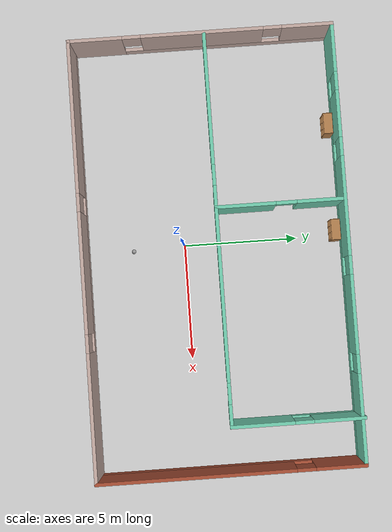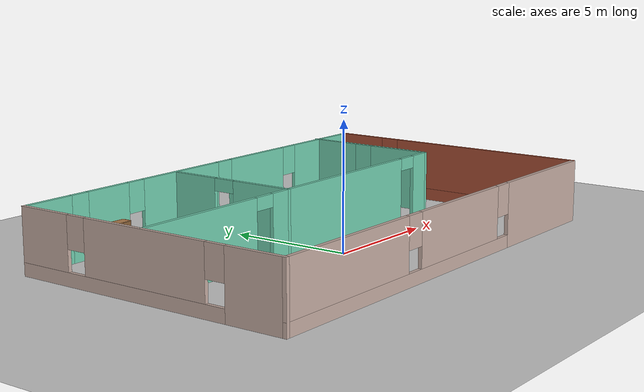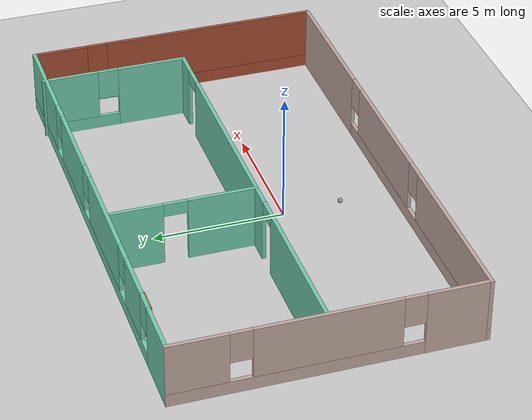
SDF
<sdf version="1.6">
 <world name="default">
  <model name="ground_plane">
   <static>1</static>
   <link name="link">
    <collision name="collision">
     <geometry><plane><normal>0 0 1</normal><size>100 100</size></plane></geometry>
     <surface><friction><ode><mu>100</mu><mu2>50</mu2></ode></friction></surface>
    </collision>
    <visual name="visual">
     <cast_shadows>0</cast_shadows>
     <geometry><plane><normal>0 0 1</normal><size>100 100</size></plane></geometry>
     <material>
      <script><uri>file://media/materials/scripts/gazebo.material</uri><name>Gazebo/Grey</name></script>
     </material>
    </visual>
   </link>
  </model>
  <light name="sun" type="directional">
   <pose>0 0 10 0 -0 0</pose>
   <diffuse>0.8 0.8 0.8 1</diffuse>
   <specular>0.1 0.1 0.1 1</specular>
   <attenuation>
    <range>1000</range>
    <constant>0.9</constant>
    <linear>0.01</linear>
    <quadratic>0.001</quadratic>
   </attenuation>
   <direction>-0.5 0.5 -1</direction>
  </light>
  <gravity>0 0 -9.8</gravity>
  <magnetic_field>6e-06 2.3e-05 -4.2e-05</magnetic_field>
  <atmosphere type="adiabatic"/>
  <physics name="default_physics" default="0" type="ode">
   <max_step_size>0.001</max_step_size>
   <real_time_factor>1</real_time_factor>
   <real_time_update_rate>1000</real_time_update_rate>
  </physics>
  <scene><ambient>0.4 0.4 0.4 1</ambient><background>0.7 0.7 0.7 1</background><shadows>1</shadows></scene>
  <spherical_coordinates>
   <surface_model>EARTH_WGS84</surface_model>
   <latitude_deg>0</latitude_deg>
   <longitude_deg>0</longitude_deg>
   <elevation>0</elevation>
   <heading_deg>0</heading_deg>
  </spherical_coordinates>
  <model name="bookshelf">
   <static>1</static>
   <link name="link">
    <inertial><mass>1</mass></inertial>
    <collision name="back">
     <pose>0 0.005 0.6 0 -0 0</pose>
     <geometry><box><size>0.9 0.01 1.2</size></box></geometry>
    </collision>
    <visual name="visual1">
     <pose>0 0.005 0.6 0 -0 0</pose>
     <geometry><box><size>0.9 0.01 1.2</size></box></geometry>
     <material>
      <script><uri>file://media/materials/scripts/gazebo.material</uri><name>Gazebo/Wood</name></script>
     </material>
    </visual>
    <collision name="left_side">
     <pose>0.45 -0.195 0.6 0 -0 0</pose>
     <geometry><box><size>0.02 0.4 1.2</size></box></geometry>
    </collision>
    <visual name="visual2">
     <pose>0.45 -0.195 0.6 0 -0 0</pose>
     <geometry><box><size>0.02 0.4 1.2</size></box></geometry>
     <material>
      <script><uri>file://media/materials/scripts/gazebo.material</uri><name>Gazebo/Wood</name></script>
     </material>
    </visual>
    <collision name="right_side">
     <pose>-0.45 -0.195 0.6 0 -0 0</pose>
     <geometry><box><size>0.02 0.4 1.2</size></box></geometry>
    </collision>
    <visual name="visual3">
     <pose>-0.45 -0.195 0.6 0 -0 0</pose>
     <geometry><box><size>0.02 0.4 1.2</size></box></geometry>
     <material>
      <script><uri>file://media/materials/scripts/gazebo.material</uri><name>Gazebo/Wood</name></script>
     </material>
    </visual>
    <collision name="bottom">
     <pose>0 -0.195 0.03 0 -0 0</pose>
     <geometry><box><size>0.88 0.4 0.06</size></box></geometry>
    </collision>
    <visual name="visual4">
     <pose>0 -0.195 0.03 0 -0 0</pose>
     <geometry><box><size>0.88 0.4 0.06</size></box></geometry>
     <material>
      <script><uri>file://media/materials/scripts/gazebo.material</uri><name>Gazebo/Wood</name></script>
     </material>
    </visual>
    <collision name="top">
     <pose>0 -0.195 1.19 0 -0 0</pose>
     <geometry><box><size>0.88 0.4 0.02</size></box></geometry>
    </collision>
    <visual name="visual5">
     <pose>0 -0.195 1.19 0 -0 0</pose>
     <geometry><box><size>0.88 0.4 0.02</size></box></geometry>
     <material>
      <script><uri>file://media/materials/scripts/gazebo.material</uri><name>Gazebo/Wood</name></script>
     </material>
    </visual>
    <collision name="low_shelf">
     <pose>0 -0.195 0.43 0 -0 0</pose>
     <geometry><box><size>0.88 0.4 0.02</size></box></geometry>
    </collision>
    <visual name="visual6">
     <pose>0 -0.195 0.43 0 -0 0</pose>
     <geometry><box><size>0.88 0.4 0.02</size></box></geometry>
     <material>
      <script><uri>file://media/materials/scripts/gazebo.material</uri><name>Gazebo/Wood</name></script>
     </material>
    </visual>
    <collision name="high_shelf">
     <pose>0 -0.195 0.8 0 -0 0</pose>
     <geometry><box><size>0.88 0.4 0.02</size></box></geometry>
    </collision>
    <visual name="visual7">
     <pose>0 -0.195 0.8 0 -0 0</pose>
     <geometry><box><size>0.88 0.4 0.02</size></box></geometry>
     <material>
      <script><uri>file://media/materials/scripts/gazebo.material</uri><name>Gazebo/Wood</name></script>
     </material>
    </visual>
   </link>
   <pose>-0.189029 6.86366 0 0 -0 0</pose>
  </model>
  <model name="bookshelf_0">
   <static>1</static>
   <link name="link">
    <inertial><mass>1</mass></inertial>
    <collision name="back">
     <pose>0 0.005 0.6 0 -0 0</pose>
     <geometry><box><size>0.9 0.01 1.2</size></box></geometry>
    </collision>
    <visual name="visual1">
     <pose>0 0.005 0.6 0 -0 0</pose>
     <geometry><box><size>0.9 0.01 1.2</size></box></geometry>
     <material>
      <script><uri>file://media/materials/scripts/gazebo.material</uri><name>Gazebo/Wood</name></script>
     </material>
    </visual>
    <collision name="left_side">
     <pose>0.45 -0.195 0.6 0 -0 0</pose>
     <geometry><box><size>0.02 0.4 1.2</size></box></geometry>
    </collision>
    <visual name="visual2">
     <pose>0.45 -0.195 0.6 0 -0 0</pose>
     <geometry><box><size>0.02 0.4 1.2</size></box></geometry>
     <material>
      <script><uri>file://media/materials/scripts/gazebo.material</uri><name>Gazebo/Wood</name></script>
     </material>
    </visual>
    <collision name="right_side">
     <pose>-0.45 -0.195 0.6 0 -0 0</pose>
     <geometry><box><size>0.02 0.4 1.2</size></box></geometry>
    </collision>
    <visual name="visual3">
     <pose>-0.45 -0.195 0.6 0 -0 0</pose>
     <geometry><box><size>0.02 0.4 1.2</size></box></geometry>
     <material>
      <script><uri>file://media/materials/scripts/gazebo.material</uri><name>Gazebo/Wood</name></script>
     </material>
    </visual>
    <collision name="bottom">
     <pose>0 -0.195 0.03 0 -0 0</pose>
     <geometry><box><size>0.88 0.4 0.06</size></box></geometry>
    </collision>
    <visual name="visual4">
     <pose>0 -0.195 0.03 0 -0 0</pose>
     <geometry><box><size>0.88 0.4 0.06</size></box></geometry>
     <material>
      <script><uri>file://media/materials/scripts/gazebo.material</uri><name>Gazebo/Wood</name></script>
     </material>
    </visual>
    <collision name="top">
     <pose>0 -0.195 1.19 0 -0 0</pose>
     <geometry><box><size>0.88 0.4 0.02</size></box></geometry>
    </collision>
    <visual name="visual5">
     <pose>0 -0.195 1.19 0 -0 0</pose>
     <geometry><box><size>0.88 0.4 0.02</size></box></geometry>
     <material>
      <script><uri>file://media/materials/scripts/gazebo.material</uri><name>Gazebo/Wood</name></script>
     </material>
    </visual>
    <collision name="low_shelf">
     <pose>0 -0.195 0.43 0 -0 0</pose>
     <geometry><box><size>0.88 0.4 0.02</size></box></geometry>
    </collision>
    <visual name="visual6">
     <pose>0 -0.195 0.43 0 -0 0</pose>
     <geometry><box><size>0.88 0.4 0.02</size></box></geometry>
     <material>
      <script><uri>file://media/materials/scripts/gazebo.material</uri><name>Gazebo/Wood</name></script>
     </material>
    </visual>
    <collision name="high_shelf">
     <pose>0 -0.195 0.8 0 -0 0</pose>
     <geometry><box><size>0.88 0.4 0.02</size></box></geometry>
    </collision>
    <visual name="visual7">
     <pose>0 -0.195 0.8 0 -0 0</pose>
     <geometry><box><size>0.88 0.4 0.02</size></box></geometry>
     <material>
      <script><uri>file://media/materials/scripts/gazebo.material</uri><name>Gazebo/Wood</name></script>
     </material>
    </visual>
   </link>
   <pose>-4.88066 6.89065 0 0 -0 0</pose>
  </model>
  <model name="myHouse_0">
   <pose>0.46401 1.38823 0 0 -0 0</pose>
   <link name="Wall_13">
    <pose>-9.425 -0.045494 0 0 -0 1.5708</pose>
    <visual name="Wall_13_Visual_0">
     <pose>-4.55656 0 1.25 0 -0 0</pose>
     <geometry><box><size>2.38689 0.15 2.5</size></box></geometry>
     <material>
      <script><uri>file://media/materials/scripts/gazebo.material</uri><name>Gazebo/Grey</name></script>
      <ambient>0.760784 0.662745 0.627451 1</ambient>
     </material>
    </visual>
    <collision name="Wall_13_Collision_0">
     <geometry><box><size>2.38689 0.15 2.5</size></box></geometry>
     <pose>-4.55656 0 1.25 0 -0 0</pose>
    </collision>
    <visual name="Wall_13_Visual_1">
     <pose>1.19344 0 0.25 0 -0 0</pose>
     <geometry><box><size>9.11311 0.15 0.5</size></box></geometry>
     <material>
      <script><uri>file://media/materials/scripts/gazebo.material</uri><name>Gazebo/Grey</name></script>
      <ambient>0.760784 0.662745 0.627451 1</ambient>
     </material>
    </visual>
    <collision name="Wall_13_Collision_1">
     <geometry><box><size>9.11311 0.15 0.5</size></box></geometry>
     <pose>1.19344 0 0.25 0 -0 0</pose>
    </collision>
    <visual name="Wall_13_Visual_2">
     <pose>0.082545 0 1.5 0 -0 0</pose>
     <geometry><box><size>5.29132 0.15 2</size></box></geometry>
     <material>
      <script><uri>file://media/materials/scripts/gazebo.material</uri><name>Gazebo/Grey</name></script>
      <ambient>0.760784 0.662745 0.627451 1</ambient>
     </material>
    </visual>
    <collision name="Wall_13_Collision_2">
     <geometry><box><size>5.29132 0.15 2</size></box></geometry>
     <pose>0.082545 0 1.5 0 -0 0</pose>
    </collision>
    <visual name="Wall_13_Visual_3">
     <pose>4.6391 0 1.5 0 -0 0</pose>
     <geometry><box><size>2.2218 0.15 2</size></box></geometry>
     <material>
      <script><uri>file://media/materials/scripts/gazebo.material</uri><name>Gazebo/Grey</name></script>
      <ambient>0.760784 0.662745 0.627451 1</ambient>
     </material>
    </visual>
    <collision name="Wall_13_Collision_3">
     <geometry><box><size>2.2218 0.15 2</size></box></geometry>
     <pose>4.6391 0 1.5 0 -0 0</pose>
    </collision>
    <visual name="Wall_13_Visual_4">
     <pose>-2.96311 0 1.9 0 -0 0</pose>
     <geometry><box><size>0.8 0.15 1.2</size></box></geometry>
     <material>
      <script><uri>file://media/materials/scripts/gazebo.material</uri><name>Gazebo/Grey</name></script>
      <ambient>0.760784 0.662745 0.627451 1</ambient>
     </material>
    </visual>
    <collision name="Wall_13_Collision_4">
     <geometry><box><size>0.8 0.15 1.2</size></box></geometry>
     <pose>-2.96311 0 1.9 0 -0 0</pose>
    </collision>
    <visual name="Wall_13_Visual_5">
     <pose>3.1282 0 1.9 0 -0 0</pose>
     <geometry><box><size>0.8 0.15 1.2</size></box></geometry>
     <material>
      <script><uri>file://media/materials/scripts/gazebo.material</uri><name>Gazebo/Grey</name></script>
      <ambient>0.760784 0.662745 0.627451 1</ambient>
     </material>
    </visual>
    <collision name="Wall_13_Collision_5">
     <geometry><box><size>0.8 0.15 1.2</size></box></geometry>
     <pose>3.1282 0 1.9 0 -0 0</pose>
    </collision>
   </link>
   <link name="Wall_14">
    <pose>-1e-06 5.62951 0 0 -0 0</pose>
    <visual name="Wall_14_Visual_0">
     <pose>-8.41086 0 1.25 0 -0 0</pose>
     <geometry><box><size>2.17828 0.15 2.5</size></box></geometry>
     <material>
      <script><uri>file://media/materials/scripts/gazebo.material</uri><name>Gazebo/Grey</name></script>
      <ambient>0.435294 0.796078 0.67451 1</ambient>
     </material>
    </visual>
    <collision name="Wall_14_Collision_0">
     <geometry><box><size>2.17828 0.15 2.5</size></box></geometry>
     <pose>-8.41086 0 1.25 0 -0 0</pose>
    </collision>
    <visual name="Wall_14_Visual_1">
     <pose>1.08914 0 0.25 0 -0 0</pose>
     <geometry><box><size>16.8217 0.15 0.5</size></box></geometry>
     <material>
      <script><uri>file://media/materials/scripts/gazebo.material</uri><name>Gazebo/Grey</name></script>
      <ambient>0.435294 0.796078 0.67451 1</ambient>
     </material>
    </visual>
    <collision name="Wall_14_Collision_1">
     <geometry><box><size>16.8217 0.15 0.5</size></box></geometry>
     <pose>1.08914 0 0.25 0 -0 0</pose>
    </collision>
    <visual name="Wall_14_Visual_2">
     <pose>-5.50319 0 1.5 0 -0 0</pose>
     <geometry><box><size>2.03705 0.15 2</size></box></geometry>
     <material>
      <script><uri>file://media/materials/scripts/gazebo.material</uri><name>Gazebo/Grey</name></script>
      <ambient>0.435294 0.796078 0.67451 1</ambient>
     </material>
    </visual>
    <collision name="Wall_14_Collision_2">
     <geometry><box><size>2.03705 0.15 2</size></box></geometry>
     <pose>-5.50319 0 1.5 0 -0 0</pose>
    </collision>
    <visual name="Wall_14_Visual_3">
     <pose>-1.5501 0 1.5 0 -0 0</pose>
     <geometry><box><size>4.26914 0.15 2</size></box></geometry>
     <material>
      <script><uri>file://media/materials/scripts/gazebo.material</uri><name>Gazebo/Grey</name></script>
      <ambient>0.435294 0.796078 0.67451 1</ambient>
     </material>
    </visual>
    <collision name="Wall_14_Collision_3">
     <geometry><box><size>4.26914 0.15 2</size></box></geometry>
     <pose>-1.5501 0 1.5 0 -0 0</pose>
    </collision>
    <visual name="Wall_14_Visual_4">
     <pose>3.08097 0 1.5 0 -0 0</pose>
     <geometry><box><size>3.393 0.15 2</size></box></geometry>
     <material>
      <script><uri>file://media/materials/scripts/gazebo.material</uri><name>Gazebo/Grey</name></script>
      <ambient>0.435294 0.796078 0.67451 1</ambient>
     </material>
    </visual>
    <collision name="Wall_14_Collision_4">
     <geometry><box><size>3.393 0.15 2</size></box></geometry>
     <pose>3.08097 0 1.5 0 -0 0</pose>
    </collision>
    <visual name="Wall_14_Visual_5">
     <pose>7.53873 0 1.5 0 -0 0</pose>
     <geometry><box><size>3.92253 0.15 2</size></box></geometry>
     <material>
      <script><uri>file://media/materials/scripts/gazebo.material</uri><name>Gazebo/Grey</name></script>
      <ambient>0.435294 0.796078 0.67451 1</ambient>
     </material>
    </visual>
    <collision name="Wall_14_Collision_5">
     <geometry><box><size>3.92253 0.15 2</size></box></geometry>
     <pose>7.53873 0 1.5 0 -0 0</pose>
    </collision>
    <visual name="Wall_14_Visual_6">
     <pose>-6.92172 0 1.9 0 -0 0</pose>
     <geometry><box><size>0.8 0.15 1.2</size></box></geometry>
     <material>
      <script><uri>file://media/materials/scripts/gazebo.material</uri><name>Gazebo/Grey</name></script>
      <ambient>0.435294 0.796078 0.67451 1</ambient>
     </material>
    </visual>
    <collision name="Wall_14_Collision_6">
     <geometry><box><size>0.8 0.15 1.2</size></box></geometry>
     <pose>-6.92172 0 1.9 0 -0 0</pose>
    </collision>
    <visual name="Wall_14_Visual_7">
     <pose>-4.08467 0 1.9 0 -0 0</pose>
     <geometry><box><size>0.8 0.15 1.2</size></box></geometry>
     <material>
      <script><uri>file://media/materials/scripts/gazebo.material</uri><name>Gazebo/Grey</name></script>
      <ambient>0.435294 0.796078 0.67451 1</ambient>
     </material>
    </visual>
    <collision name="Wall_14_Collision_7">
     <geometry><box><size>0.8 0.15 1.2</size></box></geometry>
     <pose>-4.08467 0 1.9 0 -0 0</pose>
    </collision>
    <visual name="Wall_14_Visual_8">
     <pose>0.984475 0 1.9 0 -0 0</pose>
     <geometry><box><size>0.8 0.15 1.2</size></box></geometry>
     <material>
      <script><uri>file://media/materials/scripts/gazebo.material</uri><name>Gazebo/Grey</name></script>
      <ambient>0.435294 0.796078 0.67451 1</ambient>
     </material>
    </visual>
    <collision name="Wall_14_Collision_8">
     <geometry><box><size>0.8 0.15 1.2</size></box></geometry>
     <pose>0.984475 0 1.9 0 -0 0</pose>
    </collision>
    <visual name="Wall_14_Visual_9">
     <pose>5.17747 0 1.9 0 -0 0</pose>
     <geometry><box><size>0.8 0.15 1.2</size></box></geometry>
     <material>
      <script><uri>file://media/materials/scripts/gazebo.material</uri><name>Gazebo/Grey</name></script>
      <ambient>0.435294 0.796078 0.67451 1</ambient>
     </material>
    </visual>
    <collision name="Wall_14_Collision_9">
     <geometry><box><size>0.8 0.15 1.2</size></box></geometry>
     <pose>5.17747 0 1.9 0 -0 0</pose>
    </collision>
   </link>
   <link name="Wall_15">
    <pose>9.425 -0.045494 0 0 0 -1.5708</pose>
    <visual name="Wall_15_Visual_0">
     <pose>-4.65996 0 1.25 0 -0 0</pose>
     <geometry><box><size>2.18007 0.15 2.5</size></box></geometry>
     <material>
      <script><uri>file://media/materials/scripts/gazebo.material</uri><name>Gazebo/Bricks</name></script>
      <ambient>0.760784 0.662745 0.627451 1</ambient>
     </material>
    </visual>
    <collision name="Wall_15_Collision_0">
     <geometry><box><size>2.18007 0.15 2.5</size></box></geometry>
     <pose>-4.65996 0 1.25 0 -0 0</pose>
    </collision>
    <visual name="Wall_15_Visual_1">
     <pose>1.09004 0 0.25 0 -0 0</pose>
     <geometry><box><size>9.31992 0.15 0.5</size></box></geometry>
     <material>
      <script><uri>file://media/materials/scripts/gazebo.material</uri><name>Gazebo/Bricks</name></script>
      <ambient>0.760784 0.662745 0.627451 1</ambient>
     </material>
    </visual>
    <collision name="Wall_15_Collision_1">
     <geometry><box><size>9.31992 0.15 0.5</size></box></geometry>
     <pose>1.09004 0 0.25 0 -0 0</pose>
    </collision>
    <visual name="Wall_15_Visual_2">
     <pose>1.49004 0 1.5 0 -0 0</pose>
     <geometry><box><size>8.51993 0.15 2</size></box></geometry>
     <material>
      <script><uri>file://media/materials/scripts/gazebo.material</uri><name>Gazebo/Bricks</name></script>
      <ambient>0.760784 0.662745 0.627451 1</ambient>
     </material>
    </visual>
    <collision name="Wall_15_Collision_2">
     <geometry><box><size>8.51993 0.15 2</size></box></geometry>
     <pose>1.49004 0 1.5 0 -0 0</pose>
    </collision>
    <visual name="Wall_15_Visual_3">
     <pose>-3.16993 0 1.9 0 -0 0</pose>
     <geometry><box><size>0.8 0.15 1.2</size></box></geometry>
     <material>
      <script><uri>file://media/materials/scripts/gazebo.material</uri><name>Gazebo/Bricks</name></script>
      <ambient>0.760784 0.662745 0.627451 1</ambient>
     </material>
    </visual>
    <collision name="Wall_15_Collision_3">
     <geometry><box><size>0.8 0.15 1.2</size></box></geometry>
     <pose>-3.16993 0 1.9 0 -0 0</pose>
    </collision>
   </link>
   <link name="Wall_16">
    <pose>-1e-06 -5.72049 0 0 -0 3.14159</pose>
    <visual name="Wall_16_Visual_0">
     <pose>-6.71474 0 1.25 0 -0 0</pose>
     <geometry><box><size>5.57052 0.15 2.5</size></box></geometry>
     <material>
      <script><uri>file://media/materials/scripts/gazebo.material</uri><name>Gazebo/Grey</name></script>
      <ambient>0.760784 0.662745 0.627451 1</ambient>
     </material>
    </visual>
    <collision name="Wall_16_Collision_0">
     <geometry><box><size>5.57052 0.15 2.5</size></box></geometry>
     <pose>-6.71474 0 1.25 0 -0 0</pose>
    </collision>
    <visual name="Wall_16_Visual_1">
     <pose>2.78526 0 0.25 0 -0 0</pose>
     <geometry><box><size>13.4295 0.15 0.5</size></box></geometry>
     <material>
      <script><uri>file://media/materials/scripts/gazebo.material</uri><name>Gazebo/Grey</name></script>
      <ambient>0.760784 0.662745 0.627451 1</ambient>
     </material>
    </visual>
    <collision name="Wall_16_Collision_1">
     <geometry><box><size>13.4295 0.15 0.5</size></box></geometry>
     <pose>2.78526 0 0.25 0 -0 0</pose>
    </collision>
    <visual name="Wall_16_Visual_2">
     <pose>-0.525541 0 1.5 0 -0 0</pose>
     <geometry><box><size>5.20787 0.15 2</size></box></geometry>
     <material>
      <script><uri>file://media/materials/scripts/gazebo.material</uri><name>Gazebo/Grey</name></script>
      <ambient>0.760784 0.662745 0.627451 1</ambient>
     </material>
    </visual>
    <collision name="Wall_16_Collision_2">
     <geometry><box><size>5.20787 0.15 2</size></box></geometry>
     <pose>-0.525541 0 1.5 0 -0 0</pose>
    </collision>
    <visual name="Wall_16_Visual_3">
     <pose>6.1892 0 1.5 0 -0 0</pose>
     <geometry><box><size>6.6216 0.15 2</size></box></geometry>
     <material>
      <script><uri>file://media/materials/scripts/gazebo.material</uri><name>Gazebo/Grey</name></script>
      <ambient>0.760784 0.662745 0.627451 1</ambient>
     </material>
    </visual>
    <collision name="Wall_16_Collision_3">
     <geometry><box><size>6.6216 0.15 2</size></box></geometry>
     <pose>6.1892 0 1.5 0 -0 0</pose>
    </collision>
    <visual name="Wall_16_Visual_4">
     <pose>-3.52948 0 1.9 0 -0 0</pose>
     <geometry><box><size>0.8 0.15 1.2</size></box></geometry>
     <material>
      <script><uri>file://media/materials/scripts/gazebo.material</uri><name>Gazebo/Grey</name></script>
      <ambient>0.760784 0.662745 0.627451 1</ambient>
     </material>
    </visual>
    <collision name="Wall_16_Collision_4">
     <geometry><box><size>0.8 0.15 1.2</size></box></geometry>
     <pose>-3.52948 0 1.9 0 -0 0</pose>
    </collision>
    <visual name="Wall_16_Visual_5">
     <pose>2.4784 0 1.9 0 -0 0</pose>
     <geometry><box><size>0.8 0.15 1.2</size></box></geometry>
     <material>
      <script><uri>file://media/materials/scripts/gazebo.material</uri><name>Gazebo/Grey</name></script>
      <ambient>0.760784 0.662745 0.627451 1</ambient>
     </material>
    </visual>
    <collision name="Wall_16_Collision_5">
     <geometry><box><size>0.8 0.15 1.2</size></box></geometry>
     <pose>2.4784 0 1.9 0 -0 0</pose>
    </collision>
   </link>
   <link name="Wall_18">
    <pose>-0.97914 0.120494 0 0 -0 0</pose>
    <visual name="Wall_18_Visual_0">
     <pose>-5.61055 0 1.25 0 -0 0</pose>
     <geometry><box><size>5.7789 0.15 2.5</size></box></geometry>
     <material>
      <script><uri>file://media/materials/scripts/gazebo.material</uri><name>Gazebo/Grey</name></script>
      <ambient>0.435294 0.796078 0.67451 1</ambient>
     </material>
    </visual>
    <collision name="Wall_18_Collision_0">
     <geometry><box><size>5.7789 0.15 2.5</size></box></geometry>
     <pose>-5.61055 0 1.25 0 -0 0</pose>
    </collision>
    <visual name="Wall_18_Visual_1">
     <pose>2.3704 0 1.25 0 -0 0</pose>
     <geometry><box><size>8.383 0.15 2.5</size></box></geometry>
     <material>
      <script><uri>file://media/materials/scripts/gazebo.material</uri><name>Gazebo/Grey</name></script>
      <ambient>0.435294 0.796078 0.67451 1</ambient>
     </material>
    </visual>
    <collision name="Wall_18_Collision_1">
     <geometry><box><size>8.383 0.15 2.5</size></box></geometry>
     <pose>2.3704 0 1.25 0 -0 0</pose>
    </collision>
    <visual name="Wall_18_Visual_2">
     <pose>7.98095 0 1.25 0 -0 0</pose>
     <geometry><box><size>1.0381 0.15 2.5</size></box></geometry>
     <material>
      <script><uri>file://media/materials/scripts/gazebo.material</uri><name>Gazebo/Grey</name></script>
      <ambient>0.435294 0.796078 0.67451 1</ambient>
     </material>
    </visual>
    <collision name="Wall_18_Collision_2">
     <geometry><box><size>1.0381 0.15 2.5</size></box></geometry>
     <pose>7.98095 0 1.25 0 -0 0</pose>
    </collision>
    <visual name="Wall_18_Visual_3">
     <pose>-2.2711 0 2.25 0 -0 0</pose>
     <geometry><box><size>0.9 0.15 0.5</size></box></geometry>
     <material>
      <script><uri>file://media/materials/scripts/gazebo.material</uri><name>Gazebo/Grey</name></script>
      <ambient>0.435294 0.796078 0.67451 1</ambient>
     </material>
    </visual>
    <collision name="Wall_18_Collision_3">
     <geometry><box><size>0.9 0.15 0.5</size></box></geometry>
     <pose>-2.2711 0 2.25 0 -0 0</pose>
    </collision>
    <visual name="Wall_18_Visual_4">
     <pose>7.0119 0 2.25 0 -0 0</pose>
     <geometry><box><size>0.9 0.15 0.5</size></box></geometry>
     <material>
      <script><uri>file://media/materials/scripts/gazebo.material</uri><name>Gazebo/Grey</name></script>
      <ambient>0.435294 0.796078 0.67451 1</ambient>
     </material>
    </visual>
    <collision name="Wall_18_Collision_4">
     <geometry><box><size>0.9 0.15 0.5</size></box></geometry>
     <pose>7.0119 0 2.25 0 -0 0</pose>
    </collision>
   </link>
   <link name="Wall_19">
    <pose>7.44586 2.92049 0 0 -0 1.5708</pose>
    <visual name="Wall_19_Visual_0">
     <pose>-1.50424 0 1.25 0 -0 0</pose>
     <geometry><box><size>2.74152 0.15 2.5</size></box></geometry>
     <material>
      <script><uri>file://media/materials/scripts/gazebo.material</uri><name>Gazebo/Grey</name></script>
      <ambient>0.435294 0.796078 0.67451 1</ambient>
     </material>
    </visual>
    <collision name="Wall_19_Collision_0">
     <geometry><box><size>2.74152 0.15 2.5</size></box></geometry>
     <pose>-1.50424 0 1.25 0 -0 0</pose>
    </collision>
    <visual name="Wall_19_Visual_1">
     <pose>1.37076 0 0.25 0 -0 0</pose>
     <geometry><box><size>3.00848 0.15 0.5</size></box></geometry>
     <material>
      <script><uri>file://media/materials/scripts/gazebo.material</uri><name>Gazebo/Grey</name></script>
      <ambient>0.435294 0.796078 0.67451 1</ambient>
     </material>
    </visual>
    <collision name="Wall_19_Collision_1">
     <geometry><box><size>3.00848 0.15 0.5</size></box></geometry>
     <pose>1.37076 0 0.25 0 -0 0</pose>
    </collision>
    <visual name="Wall_19_Visual_2">
     <pose>1.77076 0 1.5 0 -0 0</pose>
     <geometry><box><size>2.20848 0.15 2</size></box></geometry>
     <material>
      <script><uri>file://media/materials/scripts/gazebo.material</uri><name>Gazebo/Grey</name></script>
      <ambient>0.435294 0.796078 0.67451 1</ambient>
     </material>
    </visual>
    <collision name="Wall_19_Collision_2">
     <geometry><box><size>2.20848 0.15 2</size></box></geometry>
     <pose>1.77076 0 1.5 0 -0 0</pose>
    </collision>
    <visual name="Wall_19_Visual_3">
     <pose>0.266519 0 1.9 0 -0 0</pose>
     <geometry><box><size>0.8 0.15 1.2</size></box></geometry>
     <material>
      <script><uri>file://media/materials/scripts/gazebo.material</uri><name>Gazebo/Grey</name></script>
      <ambient>0.435294 0.796078 0.67451 1</ambient>
     </material>
    </visual>
    <collision name="Wall_19_Collision_3">
     <geometry><box><size>0.8 0.15 1.2</size></box></geometry>
     <pose>0.266519 0 1.9 0 -0 0</pose>
    </collision>
   </link>
   <link name="Wall_21">
    <pose>-1.85258 2.79549 0 0 -0 1.5708</pose>
    <visual name="Wall_21_Visual_0">
     <pose>-1.43553 0 1.25 0 -0 0</pose>
     <geometry><box><size>2.62894 0.15 2.5</size></box></geometry>
     <material>
      <script><uri>file://media/materials/scripts/gazebo.material</uri><name>Gazebo/Grey</name></script>
      <ambient>0.435294 0.796078 0.67451 1</ambient>
     </material>
    </visual>
    <collision name="Wall_21_Collision_0">
     <geometry><box><size>2.62894 0.15 2.5</size></box></geometry>
     <pose>-1.43553 0 1.25 0 -0 0</pose>
    </collision>
    <visual name="Wall_21_Visual_1">
     <pose>1.76447 0 1.25 0 -0 0</pose>
     <geometry><box><size>1.97106 0.15 2.5</size></box></geometry>
     <material>
      <script><uri>file://media/materials/scripts/gazebo.material</uri><name>Gazebo/Grey</name></script>
      <ambient>0.435294 0.796078 0.67451 1</ambient>
     </material>
    </visual>
    <collision name="Wall_21_Collision_1">
     <geometry><box><size>1.97106 0.15 2.5</size></box></geometry>
     <pose>1.76447 0 1.25 0 -0 0</pose>
    </collision>
    <visual name="Wall_21_Visual_2">
     <pose>0.328937 0 2.25 0 -0 0</pose>
     <geometry><box><size>0.9 0.15 0.5</size></box></geometry>
     <material>
      <script><uri>file://media/materials/scripts/gazebo.material</uri><name>Gazebo/Grey</name></script>
      <ambient>0.435294 0.796078 0.67451 1</ambient>
     </material>
    </visual>
    <collision name="Wall_21_Collision_2">
     <geometry><box><size>0.9 0.15 0.5</size></box></geometry>
     <pose>0.328937 0 2.25 0 -0 0</pose>
    </collision>
   </link>
   <static>1</static>
  </model>
  <model name="my_ball">
   <link name="link_0">
    <pose>0 0 0.5 0 -0 0</pose>
    <inertial>
     <mass>1</mass>
     <inertia><ixx>0.1</ixx><ixy>0</ixy><ixz>0</ixz><iyy>0.1</iyy><iyz>0</iyz><izz>0.1</izz></inertia>
    </inertial>
    <visual name="visual">
     <geometry><sphere><radius>0.1</radius></sphere></geometry>
     <material>
      <lighting>1</lighting>
      <script><uri>file://media/materials/scripts/gazebo.material</uri><name>Gazebo/Grey</name></script>
      <ambient>1 1 1 1</ambient>
      <diffuse>1 1 1 1</diffuse>
      <specular>1 1 1 1</specular>
      <emissive>1 1 1 1</emissive>
      <shader type="vertex"><normal_map>__default__</normal_map></shader>
     </material>
    </visual>
    <collision name="collision">
     <geometry><sphere><radius>0.1</radius></sphere></geometry>
     <surface>
      <friction>
       <ode><mu>1</mu><mu2>1</mu2><fdir1>0 0 0</fdir1><slip1>0</slip1><slip2>0</slip2></ode>
       <torsional>
        <coefficient>1</coefficient>
        <patch_radius>0</patch_radius>
        <surface_radius>0</surface_radius>
        <use_patch_radius>1</use_patch_radius>
        <ode><slip>0</slip></ode>
       </torsional>
      </friction>
      <bounce><restitution_coefficient>0</restitution_coefficient><threshold>1e+06</threshold></bounce>
      <contact>
       <collide_without_contact>0</collide_without_contact>
       <collide_without_contact_bitmask>1</collide_without_contact_bitmask>
       <collide_bitmask>1</collide_bitmask>
       <ode>
        <soft_cfm>0</soft_cfm>
        <soft_erp>0.2</soft_erp>
        <kp>1e+13</kp>
        <kd>1</kd>
        <max_vel>0.01</max_vel>
        <min_depth>0</min_depth>
       </ode>
       <bullet>
        <split_impulse>1</split_impulse>
        <split_impulse_penetration_threshold>-0.01</split_impulse_penetration_threshold>
        <soft_cfm>0</soft_cfm>
        <soft_erp>0.2</soft_erp>
        <kp>1e+13</kp>
        <kd>1</kd>
       </bullet>
      </contact>
     </surface>
    </collision>
   </link>
   <static>0</static>
   <pose>0.103692 -2.28174 -0.4 0 -0 0</pose>
  </model>
 </world>
</sdf>
